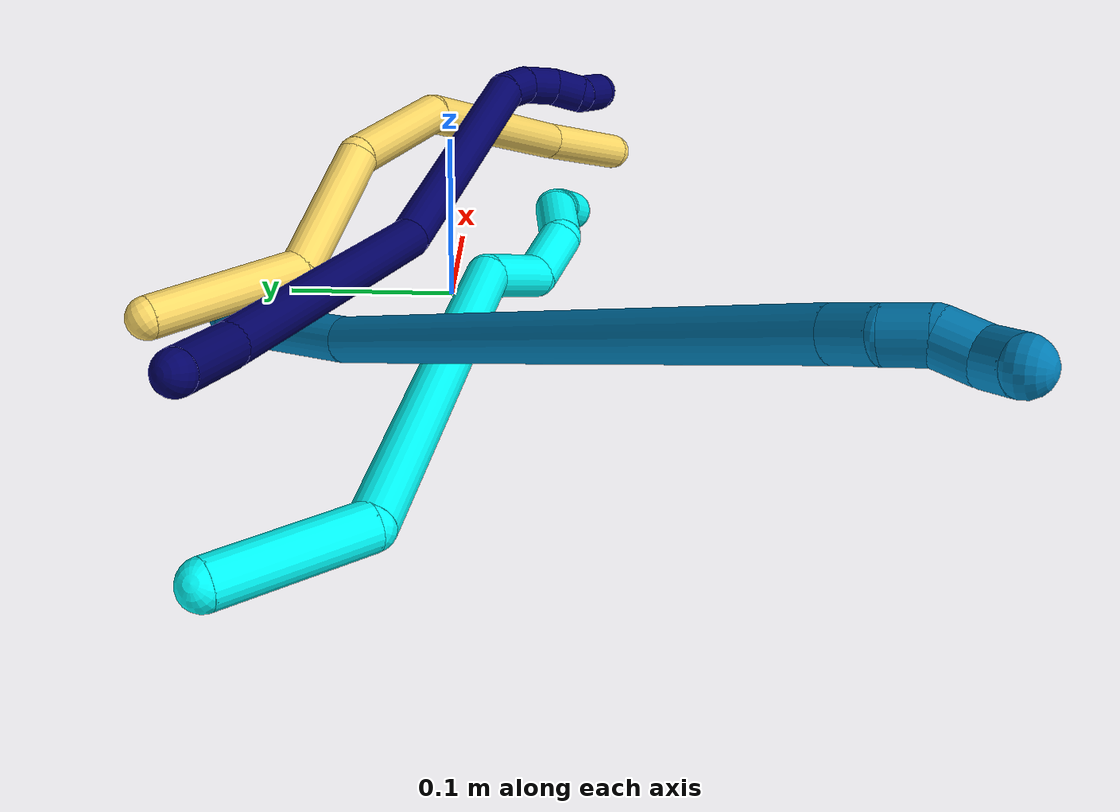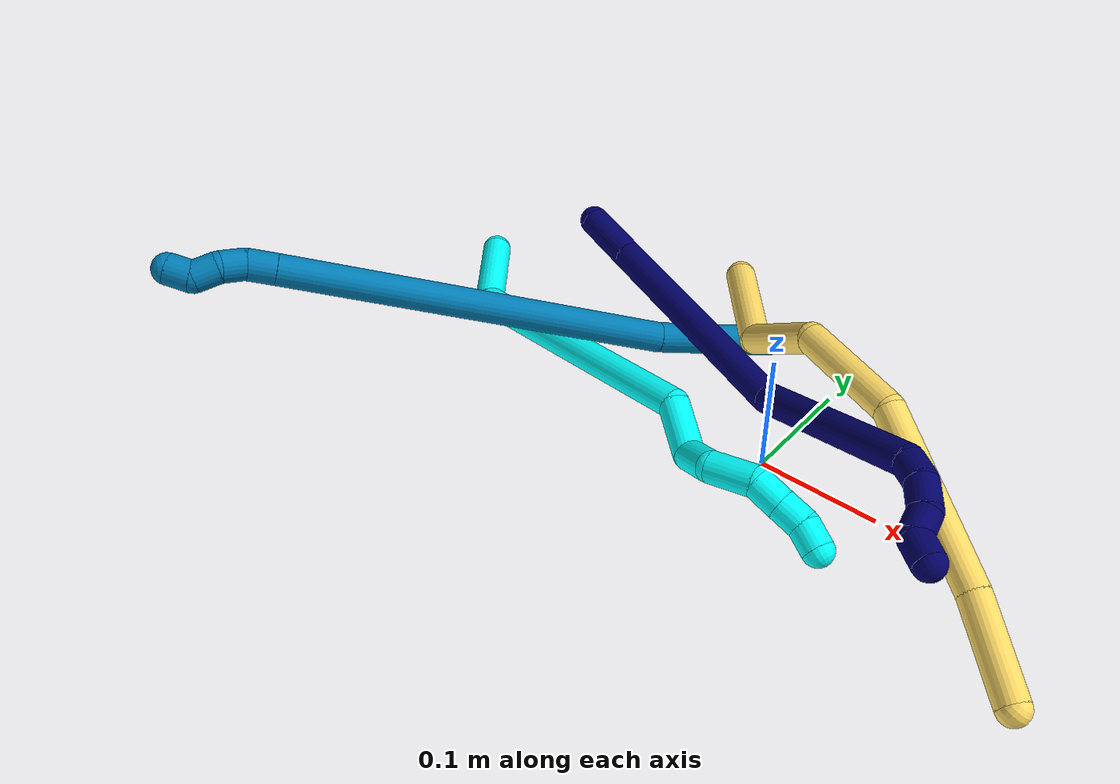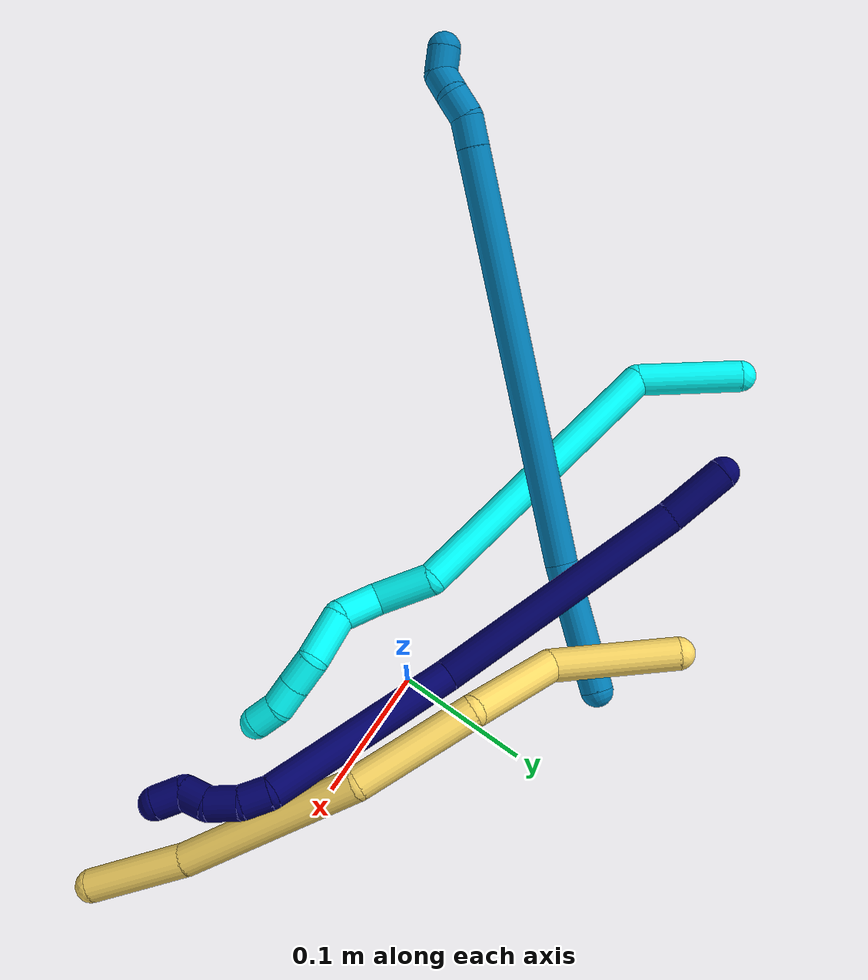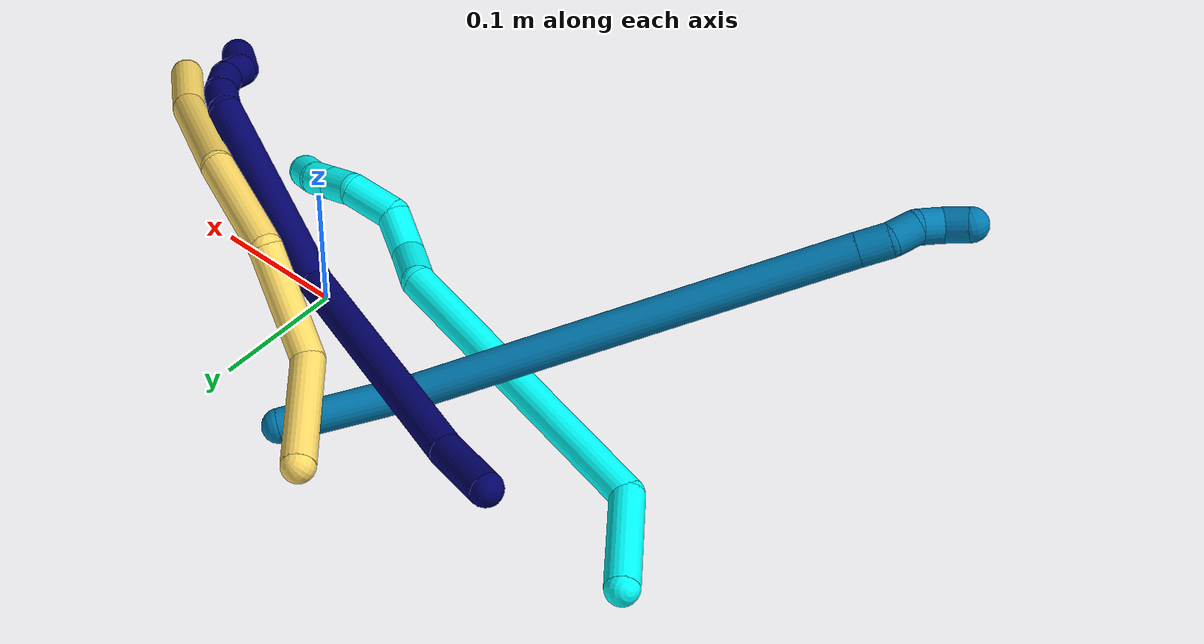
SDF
<sdf version="1.7">
 <world name="default">
  <model name="3">
   <static>0</static>
   <link name="3">
    <collision name="collision-cylinder-e_1_1_4">
     <pose>0.005523 -0.03026 -0.026968 2.29874 0.135416 0.300265</pose>
     <geometry><cylinder><radius>0.0125</radius><length>0.081816</length></cylinder></geometry>
     <surface>
      <friction><ode><mu>1.16</mu><mu2>1.16</mu2><slip1>0</slip1><slip2>0</slip2></ode></friction>
      <contact><ode><kp>1e+06</kp><kd>1</kd><max_vel>0</max_vel><min_depth>0.001</min_depth></ode></contact>
     </surface>
    </collision>
    <visual name="visual-cylinder-e_1_1_4">
     <pose>0.005523 -0.03026 -0.026968 2.29874 0.135416 0.300265</pose>
     <geometry><cylinder><radius>0.0125</radius><length>0.081816</length></cylinder></geometry>
     <material><ambient>0.003922 1 0.996078 1</ambient></material>
    </visual>
    <collision name="collision-cylinder-e_2_4_5">
     <pose>0.083018 -0.082667 -0.143167 2.8983 0.664191 2.46028</pose>
     <geometry><cylinder><radius>0.0125</radius><length>0.233517</length></cylinder></geometry>
     <surface>
      <friction><ode><mu>1.16</mu><mu2>1.16</mu2><slip1>0</slip1><slip2>0</slip2></ode></friction>
      <contact><ode><kp>1e+06</kp><kd>1</kd><max_vel>0</max_vel><min_depth>0.001</min_depth></ode></contact>
     </surface>
    </collision>
    <visual name="visual-cylinder-e_2_4_5">
     <pose>0.083018 -0.082667 -0.143167 2.8983 0.664191 2.46028</pose>
     <geometry><cylinder><radius>0.0125</radius><length>0.233517</length></cylinder></geometry>
     <material><ambient>0.003922 1 0.996078 1</ambient></material>
    </visual>
    <collision name="collision-cylinder-e_3_5_6">
     <pose>0.156013 -0.114681 -0.253229 2.69927 0.044312 0.19648</pose>
     <geometry><cylinder><radius>0.0125</radius><length>0.046147</length></cylinder></geometry>
     <surface>
      <friction><ode><mu>1.16</mu><mu2>1.16</mu2><slip1>0</slip1><slip2>0</slip2></ode></friction>
      <contact><ode><kp>1e+06</kp><kd>1</kd><max_vel>0</max_vel><min_depth>0.001</min_depth></ode></contact>
     </surface>
    </collision>
    <visual name="visual-cylinder-e_3_5_6">
     <pose>0.156013 -0.114681 -0.253229 2.69927 0.044312 0.19648</pose>
     <geometry><cylinder><radius>0.0125</radius><length>0.046147</length></cylinder></geometry>
     <material><ambient>0.003922 1 0.996078 1</ambient></material>
    </visual>
    <collision name="collision-cylinder-e_4_6_7">
     <pose>0.168555 -0.133363 -0.283065 2.36674 0.740649 1.52104</pose>
     <geometry><cylinder><radius>0.0125</radius><length>0.034147</length></cylinder></geometry>
     <surface>
      <friction><ode><mu>1.16</mu><mu2>1.16</mu2><slip1>0</slip1><slip2>0</slip2></ode></friction>
      <contact><ode><kp>1e+06</kp><kd>1</kd><max_vel>0</max_vel><min_depth>0.001</min_depth></ode></contact>
     </surface>
    </collision>
    <visual name="visual-cylinder-e_4_6_7">
     <pose>0.168555 -0.133363 -0.283065 2.36674 0.740649 1.52104</pose>
     <geometry><cylinder><radius>0.0125</radius><length>0.034147</length></cylinder></geometry>
     <material><ambient>0.003922 1 0.996078 1</ambient></material>
    </visual>
    <collision name="collision-cylinder-e_5_7_8">
     <pose>0.193372 -0.141142 -0.30559 -3.06509 0.775506 -2.95474</pose>
     <geometry><cylinder><radius>0.0125</radius><length>0.037984</length></cylinder></geometry>
     <surface>
      <friction><ode><mu>1.16</mu><mu2>1.16</mu2><slip1>0</slip1><slip2>0</slip2></ode></friction>
      <contact><ode><kp>1e+06</kp><kd>1</kd><max_vel>0</max_vel><min_depth>0.001</min_depth></ode></contact>
     </surface>
    </collision>
    <visual name="visual-cylinder-e_5_7_8">
     <pose>0.193372 -0.141142 -0.30559 -3.06509 0.775506 -2.95474</pose>
     <geometry><cylinder><radius>0.0125</radius><length>0.037984</length></cylinder></geometry>
     <material><ambient>0.003922 1 0.996078 1</ambient></material>
    </visual>
    <collision name="collision-cylinder-e_6_8_9">
     <pose>0.2101 -0.139232 -0.330549 -3.06534 0.290783 -2.63191</pose>
     <geometry><cylinder><radius>0.0125</radius><length>0.023945</length></cylinder></geometry>
     <surface>
      <friction><ode><mu>1.16</mu><mu2>1.16</mu2><slip1>0</slip1><slip2>0</slip2></ode></friction>
      <contact><ode><kp>1e+06</kp><kd>1</kd><max_vel>0</max_vel><min_depth>0.001</min_depth></ode></contact>
     </surface>
    </collision>
    <visual name="visual-cylinder-e_6_8_9">
     <pose>0.2101 -0.139232 -0.330549 -3.06534 0.290783 -2.63191</pose>
     <geometry><cylinder><radius>0.0125</radius><length>0.023945</length></cylinder></geometry>
     <material><ambient>0.003922 1 0.996078 1</ambient></material>
    </visual>
    <collision name="collision-cylinder-e_7_9_10">
     <pose>0.216673 -0.137473 -0.352075 -3.05408 0.300649 -2.57881</pose>
     <geometry><cylinder><radius>0.0125</radius><length>0.021208</length></cylinder></geometry>
     <surface>
      <friction><ode><mu>1.16</mu><mu2>1.16</mu2><slip1>0</slip1><slip2>0</slip2></ode></friction>
      <contact><ode><kp>1e+06</kp><kd>1</kd><max_vel>0</max_vel><min_depth>0.001</min_depth></ode></contact>
     </surface>
    </collision>
    <visual name="visual-cylinder-e_7_9_10">
     <pose>0.216673 -0.137473 -0.352075 -3.05408 0.300649 -2.57881</pose>
     <geometry><cylinder><radius>0.0125</radius><length>0.021208</length></cylinder></geometry>
     <material><ambient>0.003922 1 0.996078 1</ambient></material>
    </visual>
    <collision name="collision-cylinder-e_8_10_2">
     <pose>0.220695 -0.138519 -0.372569 2.95809 0.083191 0.849604</pose>
     <geometry><cylinder><radius>0.0125</radius><length>0.021237</length></cylinder></geometry>
     <surface>
      <friction><ode><mu>1.16</mu><mu2>1.16</mu2><slip1>0</slip1><slip2>0</slip2></ode></friction>
      <contact><ode><kp>1e+06</kp><kd>1</kd><max_vel>0</max_vel><min_depth>0.001</min_depth></ode></contact>
     </surface>
    </collision>
    <visual name="visual-cylinder-e_8_10_2">
     <pose>0.220695 -0.138519 -0.372569 2.95809 0.083191 0.849604</pose>
     <geometry><cylinder><radius>0.0125</radius><length>0.021237</length></cylinder></geometry>
     <material><ambient>0.003922 1 0.996078 1</ambient></material>
    </visual>
    <collision name="collision-sphere-2">
     <pose>0.221578 -0.140449 -0.382973 0 -0 0</pose>
     <geometry><sphere><radius>0.0125</radius></sphere></geometry>
     <surface>
      <friction><ode><mu>1.16</mu><mu2>1.16</mu2><slip1>0</slip1><slip2>0</slip2></ode></friction>
      <contact><ode><kp>1e+06</kp><kd>1</kd><max_vel>0</max_vel><min_depth>0.001</min_depth></ode></contact>
     </surface>
    </collision>
    <visual name="visual-sphere-2">
     <pose>0.221578 -0.140449 -0.382973 0 -0 0</pose>
     <geometry><sphere><radius>0.0125</radius></sphere></geometry>
     <material><ambient>0.003922 1 0.996078 1</ambient></material>
    </visual>
    <collision name="collision-sphere-10">
     <pose>0.219813 -0.136588 -0.362165 0 -0 0</pose>
     <geometry><sphere><radius>0.0125</radius></sphere></geometry>
     <surface>
      <friction><ode><mu>1.16</mu><mu2>1.16</mu2><slip1>0</slip1><slip2>0</slip2></ode></friction>
      <contact><ode><kp>1e+06</kp><kd>1</kd><max_vel>0</max_vel><min_depth>0.001</min_depth></ode></contact>
     </surface>
    </collision>
    <visual name="visual-sphere-10">
     <pose>0.219813 -0.136588 -0.362165 0 -0 0</pose>
     <geometry><sphere><radius>0.0125</radius></sphere></geometry>
     <material><ambient>0.003922 1 0.996078 1</ambient></material>
    </visual>
    <collision name="collision-sphere-9">
     <pose>0.213532 -0.138358 -0.341985 0 -0 0</pose>
     <geometry><sphere><radius>0.0125</radius></sphere></geometry>
     <surface>
      <friction><ode><mu>1.16</mu><mu2>1.16</mu2><slip1>0</slip1><slip2>0</slip2></ode></friction>
      <contact><ode><kp>1e+06</kp><kd>1</kd><max_vel>0</max_vel><min_depth>0.001</min_depth></ode></contact>
     </surface>
    </collision>
    <visual name="visual-sphere-9">
     <pose>0.213532 -0.138358 -0.341985 0 -0 0</pose>
     <geometry><sphere><radius>0.0125</radius></sphere></geometry>
     <material><ambient>0.003922 1 0.996078 1</ambient></material>
    </visual>
    <collision name="collision-sphere-4">
     <pose>0.011045 -0.06052 -0.053937 0 -0 0</pose>
     <geometry><sphere><radius>0.0125</radius></sphere></geometry>
     <surface>
      <friction><ode><mu>1.16</mu><mu2>1.16</mu2><slip1>0</slip1><slip2>0</slip2></ode></friction>
      <contact><ode><kp>1e+06</kp><kd>1</kd><max_vel>0</max_vel><min_depth>0.001</min_depth></ode></contact>
     </surface>
    </collision>
    <visual name="visual-sphere-4">
     <pose>0.011045 -0.06052 -0.053937 0 -0 0</pose>
     <geometry><sphere><radius>0.0125</radius></sphere></geometry>
     <material><ambient>0.003922 1 0.996078 1</ambient></material>
    </visual>
    <collision name="collision-sphere-1">
     <geometry><sphere><radius>0.0125</radius></sphere></geometry>
     <surface>
      <friction><ode><mu>1.16</mu><mu2>1.16</mu2><slip1>0</slip1><slip2>0</slip2></ode></friction>
      <contact><ode><kp>1e+06</kp><kd>1</kd><max_vel>0</max_vel><min_depth>0.001</min_depth></ode></contact>
     </surface>
    </collision>
    <visual name="visual-sphere-1">
     <geometry><sphere><radius>0.0125</radius></sphere></geometry>
     <material><ambient>0.003922 1 0.996078 1</ambient></material>
    </visual>
    <collision name="collision-sphere-8">
     <pose>0.206667 -0.140106 -0.319112 0 -0 0</pose>
     <geometry><sphere><radius>0.0125</radius></sphere></geometry>
     <surface>
      <friction><ode><mu>1.16</mu><mu2>1.16</mu2><slip1>0</slip1><slip2>0</slip2></ode></friction>
      <contact><ode><kp>1e+06</kp><kd>1</kd><max_vel>0</max_vel><min_depth>0.001</min_depth></ode></contact>
     </surface>
    </collision>
    <visual name="visual-sphere-8">
     <pose>0.206667 -0.140106 -0.319112 0 -0 0</pose>
     <geometry><sphere><radius>0.0125</radius></sphere></geometry>
     <material><ambient>0.003922 1 0.996078 1</ambient></material>
    </visual>
    <collision name="collision-sphere-5">
     <pose>0.15499 -0.104814 -0.232397 0 -0 0</pose>
     <geometry><sphere><radius>0.0125</radius></sphere></geometry>
     <surface>
      <friction><ode><mu>1.16</mu><mu2>1.16</mu2><slip1>0</slip1><slip2>0</slip2></ode></friction>
      <contact><ode><kp>1e+06</kp><kd>1</kd><max_vel>0</max_vel><min_depth>0.001</min_depth></ode></contact>
     </surface>
    </collision>
    <visual name="visual-sphere-5">
     <pose>0.15499 -0.104814 -0.232397 0 -0 0</pose>
     <geometry><sphere><radius>0.0125</radius></sphere></geometry>
     <material><ambient>0.003922 1 0.996078 1</ambient></material>
    </visual>
    <collision name="collision-sphere-6">
     <pose>0.157035 -0.124547 -0.274062 0 -0 0</pose>
     <geometry><sphere><radius>0.0125</radius></sphere></geometry>
     <surface>
      <friction><ode><mu>1.16</mu><mu2>1.16</mu2><slip1>0</slip1><slip2>0</slip2></ode></friction>
      <contact><ode><kp>1e+06</kp><kd>1</kd><max_vel>0</max_vel><min_depth>0.001</min_depth></ode></contact>
     </surface>
    </collision>
    <visual name="visual-sphere-6">
     <pose>0.157035 -0.124547 -0.274062 0 -0 0</pose>
     <geometry><sphere><radius>0.0125</radius></sphere></geometry>
     <material><ambient>0.003922 1 0.996078 1</ambient></material>
    </visual>
    <collision name="collision-sphere-7">
     <pose>0.180076 -0.142179 -0.292069 0 -0 0</pose>
     <geometry><sphere><radius>0.0125</radius></sphere></geometry>
     <surface>
      <friction><ode><mu>1.16</mu><mu2>1.16</mu2><slip1>0</slip1><slip2>0</slip2></ode></friction>
      <contact><ode><kp>1e+06</kp><kd>1</kd><max_vel>0</max_vel><min_depth>0.001</min_depth></ode></contact>
     </surface>
    </collision>
    <visual name="visual-sphere-7">
     <pose>0.180076 -0.142179 -0.292069 0 -0 0</pose>
     <geometry><sphere><radius>0.0125</radius></sphere></geometry>
     <material><ambient>0.003922 1 0.996078 1</ambient></material>
    </visual>
    <inertial>
     <pose>0.108902 -0.092356 -0.183783 0 -0 0</pose>
     <mass>0.5</mass>
     <inertia>
      <ixx>-3.8e-05</ixx>
      <ixy>0</ixy>
      <ixz>0</ixz>
      <iyy>0.001417</iyy>
      <iyz>0</iyz>
      <izz>-0.00046</izz>
     </inertia>
    </inertial>
   </link>
   <pose>-0.3467 0.078879 0.012501 -0.577854 -0.864778 0.447709</pose>
  </model>
  <model name="5">
   <static>0</static>
   <link name="5">
    <collision name="collision-cylinder-e_1_1_4">
     <pose>0.047794 0.001089 0.007816 -0.138445 1.40715 -0.117512</pose>
     <geometry><cylinder><radius>0.0125</radius><length>0.096883</length></cylinder></geometry>
     <surface>
      <friction><ode><mu>1.16</mu><mu2>1.16</mu2><slip1>0</slip1><slip2>0</slip2></ode></friction>
      <contact><ode><kp>1e+06</kp><kd>1</kd><max_vel>0</max_vel><min_depth>0.001</min_depth></ode></contact>
     </surface>
    </collision>
    <visual name="visual-cylinder-e_1_1_4">
     <pose>0.047794 0.001089 0.007816 -0.138445 1.40715 -0.117512</pose>
     <geometry><cylinder><radius>0.0125</radius><length>0.096883</length></cylinder></geometry>
     <material><ambient>1 0.858824 0.4 1</ambient></material>
    </visual>
    <collision name="collision-cylinder-e_2_4_5">
     <pose>0.131407 0.004728 -0.006503 -3.0269 1.01429 -2.93568</pose>
     <geometry><cylinder><radius>0.0125</radius><length>0.084368</length></cylinder></geometry>
     <surface>
      <friction><ode><mu>1.16</mu><mu2>1.16</mu2><slip1>0</slip1><slip2>0</slip2></ode></friction>
      <contact><ode><kp>1e+06</kp><kd>1</kd><max_vel>0</max_vel><min_depth>0.001</min_depth></ode></contact>
     </surface>
    </collision>
    <visual name="visual-cylinder-e_2_4_5">
     <pose>0.131407 0.004728 -0.006503 -3.0269 1.01429 -2.93568</pose>
     <geometry><cylinder><radius>0.0125</radius><length>0.084368</length></cylinder></geometry>
     <material><ambient>1 0.858824 0.4 1</ambient></material>
    </visual>
    <collision name="collision-cylinder-e_3_5_6">
     <pose>0.211465 -0.008838 -0.033547 1.86641 1.20694 1.49871</pose>
     <geometry><cylinder><radius>0.0125</radius><length>0.094676</length></cylinder></geometry>
     <surface>
      <friction><ode><mu>1.16</mu><mu2>1.16</mu2><slip1>0</slip1><slip2>0</slip2></ode></friction>
      <contact><ode><kp>1e+06</kp><kd>1</kd><max_vel>0</max_vel><min_depth>0.001</min_depth></ode></contact>
     </surface>
    </collision>
    <visual name="visual-cylinder-e_3_5_6">
     <pose>0.211465 -0.008838 -0.033547 1.86641 1.20694 1.49871</pose>
     <geometry><cylinder><radius>0.0125</radius><length>0.094676</length></cylinder></geometry>
     <material><ambient>1 0.858824 0.4 1</ambient></material>
    </visual>
    <collision name="collision-cylinder-e_4_6_7">
     <pose>0.317365 -0.05685 -0.017432 0.988041 1.01614 0.582708</pose>
     <geometry><cylinder><radius>0.0125</radius><length>0.145071</length></cylinder></geometry>
     <surface>
      <friction><ode><mu>1.16</mu><mu2>1.16</mu2><slip1>0</slip1><slip2>0</slip2></ode></friction>
      <contact><ode><kp>1e+06</kp><kd>1</kd><max_vel>0</max_vel><min_depth>0.001</min_depth></ode></contact>
     </surface>
    </collision>
    <visual name="visual-cylinder-e_4_6_7">
     <pose>0.317365 -0.05685 -0.017432 0.988041 1.01614 0.582708</pose>
     <geometry><cylinder><radius>0.0125</radius><length>0.145071</length></cylinder></geometry>
     <material><ambient>1 0.858824 0.4 1</ambient></material>
    </visual>
    <collision name="collision-cylinder-e_5_7_2">
     <pose>0.413864 -0.101514 0.017141 0.755706 1.08 0.467172</pose>
     <geometry><cylinder><radius>0.0125</radius><length>0.079002</length></cylinder></geometry>
     <surface>
      <friction><ode><mu>1.16</mu><mu2>1.16</mu2><slip1>0</slip1><slip2>0</slip2></ode></friction>
      <contact><ode><kp>1e+06</kp><kd>1</kd><max_vel>0</max_vel><min_depth>0.001</min_depth></ode></contact>
     </surface>
    </collision>
    <visual name="visual-cylinder-e_5_7_2">
     <pose>0.413864 -0.101514 0.017141 0.755706 1.08 0.467172</pose>
     <geometry><cylinder><radius>0.0125</radius><length>0.079002</length></cylinder></geometry>
     <material><ambient>1 0.858824 0.4 1</ambient></material>
    </visual>
    <collision name="collision-sphere-2">
     <pose>0.448703 -0.114282 0.030691 0 -0 0</pose>
     <geometry><sphere><radius>0.0125</radius></sphere></geometry>
     <surface>
      <friction><ode><mu>1.16</mu><mu2>1.16</mu2><slip1>0</slip1><slip2>0</slip2></ode></friction>
      <contact><ode><kp>1e+06</kp><kd>1</kd><max_vel>0</max_vel><min_depth>0.001</min_depth></ode></contact>
     </surface>
    </collision>
    <visual name="visual-sphere-2">
     <pose>0.448703 -0.114282 0.030691 0 -0 0</pose>
     <geometry><sphere><radius>0.0125</radius></sphere></geometry>
     <material><ambient>1 0.858824 0.4 1</ambient></material>
    </visual>
    <collision name="collision-sphere-7">
     <pose>0.379026 -0.088746 0.003591 0 -0 0</pose>
     <geometry><sphere><radius>0.0125</radius></sphere></geometry>
     <surface>
      <friction><ode><mu>1.16</mu><mu2>1.16</mu2><slip1>0</slip1><slip2>0</slip2></ode></friction>
      <contact><ode><kp>1e+06</kp><kd>1</kd><max_vel>0</max_vel><min_depth>0.001</min_depth></ode></contact>
     </surface>
    </collision>
    <visual name="visual-sphere-7">
     <pose>0.379026 -0.088746 0.003591 0 -0 0</pose>
     <geometry><sphere><radius>0.0125</radius></sphere></geometry>
     <material><ambient>1 0.858824 0.4 1</ambient></material>
    </visual>
    <collision name="collision-sphere-6">
     <pose>0.255703 -0.024954 -0.038455 0 -0 0</pose>
     <geometry><sphere><radius>0.0125</radius></sphere></geometry>
     <surface>
      <friction><ode><mu>1.16</mu><mu2>1.16</mu2><slip1>0</slip1><slip2>0</slip2></ode></friction>
      <contact><ode><kp>1e+06</kp><kd>1</kd><max_vel>0</max_vel><min_depth>0.001</min_depth></ode></contact>
     </surface>
    </collision>
    <visual name="visual-sphere-6">
     <pose>0.255703 -0.024954 -0.038455 0 -0 0</pose>
     <geometry><sphere><radius>0.0125</radius></sphere></geometry>
     <material><ambient>1 0.858824 0.4 1</ambient></material>
    </visual>
    <collision name="collision-sphere-5">
     <pose>0.167226 0.007278 -0.028639 0 -0 0</pose>
     <geometry><sphere><radius>0.0125</radius></sphere></geometry>
     <surface>
      <friction><ode><mu>1.16</mu><mu2>1.16</mu2><slip1>0</slip1><slip2>0</slip2></ode></friction>
      <contact><ode><kp>1e+06</kp><kd>1</kd><max_vel>0</max_vel><min_depth>0.001</min_depth></ode></contact>
     </surface>
    </collision>
    <visual name="visual-sphere-5">
     <pose>0.167226 0.007278 -0.028639 0 -0 0</pose>
     <geometry><sphere><radius>0.0125</radius></sphere></geometry>
     <material><ambient>1 0.858824 0.4 1</ambient></material>
    </visual>
    <collision name="collision-sphere-1">
     <geometry><sphere><radius>0.0125</radius></sphere></geometry>
     <surface>
      <friction><ode><mu>1.16</mu><mu2>1.16</mu2><slip1>0</slip1><slip2>0</slip2></ode></friction>
      <contact><ode><kp>1e+06</kp><kd>1</kd><max_vel>0</max_vel><min_depth>0.001</min_depth></ode></contact>
     </surface>
    </collision>
    <visual name="visual-sphere-1">
     <geometry><sphere><radius>0.0125</radius></sphere></geometry>
     <material><ambient>1 0.858824 0.4 1</ambient></material>
    </visual>
    <collision name="collision-sphere-4">
     <pose>0.095589 0.002178 0.015633 0 -0 0</pose>
     <geometry><sphere><radius>0.0125</radius></sphere></geometry>
     <surface>
      <friction><ode><mu>1.16</mu><mu2>1.16</mu2><slip1>0</slip1><slip2>0</slip2></ode></friction>
      <contact><ode><kp>1e+06</kp><kd>1</kd><max_vel>0</max_vel><min_depth>0.001</min_depth></ode></contact>
     </surface>
    </collision>
    <visual name="visual-sphere-4">
     <pose>0.095589 0.002178 0.015633 0 -0 0</pose>
     <geometry><sphere><radius>0.0125</radius></sphere></geometry>
     <material><ambient>1 0.858824 0.4 1</ambient></material>
    </visual>
    <inertial>
     <pose>0.228948 -0.033199 -0.008284 0 -0 0</pose>
     <mass>0.5</mass>
     <inertia>
      <ixx>0.000259</ixx>
      <ixy>0</ixy>
      <ixz>0</ixz>
      <iyy>0.000554</iyy>
      <iyz>0</iyz>
      <izz>-0.000302</izz>
     </inertia>
    </inertial>
   </link>
   <pose>-0.128103 0.155931 0.037033 2.46229 -0.154437 -0.744353</pose>
  </model>
  <model name="7">
   <static>0</static>
   <link name="7">
    <collision name="collision-cylinder-e_1_1_4">
     <pose>0.005402 0.003462 -0.02473 -3.00251 0.213042 -1.98685</pose>
     <geometry><cylinder><radius>0.0125</radius><length>0.051096</length></cylinder></geometry>
     <surface>
      <friction><ode><mu>1.16</mu><mu2>1.16</mu2><slip1>0</slip1><slip2>0</slip2></ode></friction>
      <contact><ode><kp>1e+06</kp><kd>1</kd><max_vel>0</max_vel><min_depth>0.001</min_depth></ode></contact>
     </surface>
    </collision>
    <visual name="visual-cylinder-e_1_1_4">
     <pose>0.005402 0.003462 -0.02473 -3.00251 0.213042 -1.98685</pose>
     <geometry><cylinder><radius>0.0125</radius><length>0.051096</length></cylinder></geometry>
     <material><ambient>0.003922 0 0.403922 1</ambient></material>
    </visual>
    <collision name="collision-cylinder-e_2_4_5">
     <pose>0.037193 0.01044 -0.147723 -3.10582 0.26221 -2.87191</pose>
     <geometry><cylinder><radius>0.0125</radius><length>0.203613</length></cylinder></geometry>
     <surface>
      <friction><ode><mu>1.16</mu><mu2>1.16</mu2><slip1>0</slip1><slip2>0</slip2></ode></friction>
      <contact><ode><kp>1e+06</kp><kd>1</kd><max_vel>0</max_vel><min_depth>0.001</min_depth></ode></contact>
     </surface>
    </collision>
    <visual name="visual-cylinder-e_2_4_5">
     <pose>0.037193 0.01044 -0.147723 -3.10582 0.26221 -2.87191</pose>
     <geometry><cylinder><radius>0.0125</radius><length>0.203613</length></cylinder></geometry>
     <material><ambient>0.003922 0 0.403922 1</ambient></material>
    </visual>
    <collision name="collision-cylinder-e_3_5_6">
     <pose>0.108884 0.00046 -0.309523 2.93227 0.609002 2.49646</pose>
     <geometry><cylinder><radius>0.0125</radius><length>0.158381</length></cylinder></geometry>
     <surface>
      <friction><ode><mu>1.16</mu><mu2>1.16</mu2><slip1>0</slip1><slip2>0</slip2></ode></friction>
      <contact><ode><kp>1e+06</kp><kd>1</kd><max_vel>0</max_vel><min_depth>0.001</min_depth></ode></contact>
     </surface>
    </collision>
    <visual name="visual-cylinder-e_3_5_6">
     <pose>0.108884 0.00046 -0.309523 2.93227 0.609002 2.49646</pose>
     <geometry><cylinder><radius>0.0125</radius><length>0.158381</length></cylinder></geometry>
     <material><ambient>0.003922 0 0.403922 1</ambient></material>
    </visual>
    <collision name="collision-cylinder-e_4_6_7">
     <pose>0.155948 -0.01545 -0.383016 2.90384 0.170433 1.24171</pose>
     <geometry><cylinder><radius>0.0125</radius><length>0.020792</length></cylinder></geometry>
     <surface>
      <friction><ode><mu>1.16</mu><mu2>1.16</mu2><slip1>0</slip1><slip2>0</slip2></ode></friction>
      <contact><ode><kp>1e+06</kp><kd>1</kd><max_vel>0</max_vel><min_depth>0.001</min_depth></ode></contact>
     </surface>
    </collision>
    <visual name="visual-cylinder-e_4_6_7">
     <pose>0.155948 -0.01545 -0.383016 2.90384 0.170433 1.24171</pose>
     <geometry><cylinder><radius>0.0125</radius><length>0.020792</length></cylinder></geometry>
     <material><ambient>0.003922 0 0.403922 1</ambient></material>
    </visual>
    <collision name="collision-cylinder-e_5_7_8">
     <pose>0.155818 -0.022167 -0.403923 2.76703 -0.159602 -0.79867</pose>
     <geometry><cylinder><radius>0.0125</radius><length>0.023834</length></cylinder></geometry>
     <surface>
      <friction><ode><mu>1.16</mu><mu2>1.16</mu2><slip1>0</slip1><slip2>0</slip2></ode></friction>
      <contact><ode><kp>1e+06</kp><kd>1</kd><max_vel>0</max_vel><min_depth>0.001</min_depth></ode></contact>
     </surface>
    </collision>
    <visual name="visual-cylinder-e_5_7_8">
     <pose>0.155818 -0.022167 -0.403923 2.76703 -0.159602 -0.79867</pose>
     <geometry><cylinder><radius>0.0125</radius><length>0.023834</length></cylinder></geometry>
     <material><ambient>0.003922 0 0.403922 1</ambient></material>
    </visual>
    <collision name="collision-cylinder-e_6_8_9">
     <pose>0.148904 -0.032211 -0.421704 2.44287 -0.512458 -1.24692</pose>
     <geometry><cylinder><radius>0.0125</radius><length>0.020474</length></cylinder></geometry>
     <surface>
      <friction><ode><mu>1.16</mu><mu2>1.16</mu2><slip1>0</slip1><slip2>0</slip2></ode></friction>
      <contact><ode><kp>1e+06</kp><kd>1</kd><max_vel>0</max_vel><min_depth>0.001</min_depth></ode></contact>
     </surface>
    </collision>
    <visual name="visual-cylinder-e_6_8_9">
     <pose>0.148904 -0.032211 -0.421704 2.44287 -0.512458 -1.24692</pose>
     <geometry><cylinder><radius>0.0125</radius><length>0.020474</length></cylinder></geometry>
     <material><ambient>0.003922 0 0.403922 1</ambient></material>
    </visual>
    <collision name="collision-cylinder-e_7_9_2">
     <pose>0.144584 -0.039583 -0.439294 2.99097 0.06413 0.803913</pose>
     <geometry><cylinder><radius>0.0125</radius><length>0.021809</length></cylinder></geometry>
     <surface>
      <friction><ode><mu>1.16</mu><mu2>1.16</mu2><slip1>0</slip1><slip2>0</slip2></ode></friction>
      <contact><ode><kp>1e+06</kp><kd>1</kd><max_vel>0</max_vel><min_depth>0.001</min_depth></ode></contact>
     </surface>
    </collision>
    <visual name="visual-cylinder-e_7_9_2">
     <pose>0.144584 -0.039583 -0.439294 2.99097 0.06413 0.803913</pose>
     <geometry><cylinder><radius>0.0125</radius><length>0.021809</length></cylinder></geometry>
     <material><ambient>0.003922 0 0.403922 1</ambient></material>
    </visual>
    <collision name="collision-sphere-2">
     <pose>0.145283 -0.041216 -0.450053 0 -0 0</pose>
     <geometry><sphere><radius>0.0125</radius></sphere></geometry>
     <surface>
      <friction><ode><mu>1.16</mu><mu2>1.16</mu2><slip1>0</slip1><slip2>0</slip2></ode></friction>
      <contact><ode><kp>1e+06</kp><kd>1</kd><max_vel>0</max_vel><min_depth>0.001</min_depth></ode></contact>
     </surface>
    </collision>
    <visual name="visual-sphere-2">
     <pose>0.145283 -0.041216 -0.450053 0 -0 0</pose>
     <geometry><sphere><radius>0.0125</radius></sphere></geometry>
     <material><ambient>0.003922 0 0.403922 1</ambient></material>
    </visual>
    <collision name="collision-sphere-9">
     <pose>0.143885 -0.03795 -0.428535 0 -0 0</pose>
     <geometry><sphere><radius>0.0125</radius></sphere></geometry>
     <surface>
      <friction><ode><mu>1.16</mu><mu2>1.16</mu2><slip1>0</slip1><slip2>0</slip2></ode></friction>
      <contact><ode><kp>1e+06</kp><kd>1</kd><max_vel>0</max_vel><min_depth>0.001</min_depth></ode></contact>
     </surface>
    </collision>
    <visual name="visual-sphere-9">
     <pose>0.143885 -0.03795 -0.428535 0 -0 0</pose>
     <geometry><sphere><radius>0.0125</radius></sphere></geometry>
     <material><ambient>0.003922 0 0.403922 1</ambient></material>
    </visual>
    <collision name="collision-sphere-4">
     <pose>0.010804 0.006924 -0.049459 0 -0 0</pose>
     <geometry><sphere><radius>0.0125</radius></sphere></geometry>
     <surface>
      <friction><ode><mu>1.16</mu><mu2>1.16</mu2><slip1>0</slip1><slip2>0</slip2></ode></friction>
      <contact><ode><kp>1e+06</kp><kd>1</kd><max_vel>0</max_vel><min_depth>0.001</min_depth></ode></contact>
     </surface>
    </collision>
    <visual name="visual-sphere-4">
     <pose>0.010804 0.006924 -0.049459 0 -0 0</pose>
     <geometry><sphere><radius>0.0125</radius></sphere></geometry>
     <material><ambient>0.003922 0 0.403922 1</ambient></material>
    </visual>
    <collision name="collision-sphere-1">
     <geometry><sphere><radius>0.0125</radius></sphere></geometry>
     <surface>
      <friction><ode><mu>1.16</mu><mu2>1.16</mu2><slip1>0</slip1><slip2>0</slip2></ode></friction>
      <contact><ode><kp>1e+06</kp><kd>1</kd><max_vel>0</max_vel><min_depth>0.001</min_depth></ode></contact>
     </surface>
    </collision>
    <visual name="visual-sphere-1">
     <geometry><sphere><radius>0.0125</radius></sphere></geometry>
     <material><ambient>0.003922 0 0.403922 1</ambient></material>
    </visual>
    <collision name="collision-sphere-8">
     <pose>0.153924 -0.026472 -0.414873 0 -0 0</pose>
     <geometry><sphere><radius>0.0125</radius></sphere></geometry>
     <surface>
      <friction><ode><mu>1.16</mu><mu2>1.16</mu2><slip1>0</slip1><slip2>0</slip2></ode></friction>
      <contact><ode><kp>1e+06</kp><kd>1</kd><max_vel>0</max_vel><min_depth>0.001</min_depth></ode></contact>
     </surface>
    </collision>
    <visual name="visual-sphere-8">
     <pose>0.153924 -0.026472 -0.414873 0 -0 0</pose>
     <geometry><sphere><radius>0.0125</radius></sphere></geometry>
     <material><ambient>0.003922 0 0.403922 1</ambient></material>
    </visual>
    <collision name="collision-sphere-5">
     <pose>0.063583 0.013957 -0.245987 0 -0 0</pose>
     <geometry><sphere><radius>0.0125</radius></sphere></geometry>
     <surface>
      <friction><ode><mu>1.16</mu><mu2>1.16</mu2><slip1>0</slip1><slip2>0</slip2></ode></friction>
      <contact><ode><kp>1e+06</kp><kd>1</kd><max_vel>0</max_vel><min_depth>0.001</min_depth></ode></contact>
     </surface>
    </collision>
    <visual name="visual-sphere-5">
     <pose>0.063583 0.013957 -0.245987 0 -0 0</pose>
     <geometry><sphere><radius>0.0125</radius></sphere></geometry>
     <material><ambient>0.003922 0 0.403922 1</ambient></material>
    </visual>
    <collision name="collision-sphere-6">
     <pose>0.154185 -0.013037 -0.373059 0 -0 0</pose>
     <geometry><sphere><radius>0.0125</radius></sphere></geometry>
     <surface>
      <friction><ode><mu>1.16</mu><mu2>1.16</mu2><slip1>0</slip1><slip2>0</slip2></ode></friction>
      <contact><ode><kp>1e+06</kp><kd>1</kd><max_vel>0</max_vel><min_depth>0.001</min_depth></ode></contact>
     </surface>
    </collision>
    <visual name="visual-sphere-6">
     <pose>0.154185 -0.013037 -0.373059 0 -0 0</pose>
     <geometry><sphere><radius>0.0125</radius></sphere></geometry>
     <material><ambient>0.003922 0 0.403922 1</ambient></material>
    </visual>
    <collision name="collision-sphere-7">
     <pose>0.157712 -0.017863 -0.392973 0 -0 0</pose>
     <geometry><sphere><radius>0.0125</radius></sphere></geometry>
     <surface>
      <friction><ode><mu>1.16</mu><mu2>1.16</mu2><slip1>0</slip1><slip2>0</slip2></ode></friction>
      <contact><ode><kp>1e+06</kp><kd>1</kd><max_vel>0</max_vel><min_depth>0.001</min_depth></ode></contact>
     </surface>
    </collision>
    <visual name="visual-sphere-7">
     <pose>0.157712 -0.017863 -0.392973 0 -0 0</pose>
     <geometry><sphere><radius>0.0125</radius></sphere></geometry>
     <material><ambient>0.003922 0 0.403922 1</ambient></material>
    </visual>
    <inertial>
     <pose>0.076505 6e-06 -0.23234 0 -0 0</pose>
     <mass>0.5</mass>
     <inertia>
      <ixx>-0.000902</ixx>
      <ixy>0</ixy>
      <ixz>0</ixz>
      <iyy>0.000946</iyy>
      <iyz>0</iyz>
      <izz>-0.000381</izz>
     </inertia>
    </inertial>
   </link>
   <pose>-0.254558 0.108476 0.066398 -1.07242 -0.951573 0.633673</pose>
  </model>
  <model name="9">
   <static>0</static>
   <link name="9">
    <collision name="collision-cylinder-e_1_1_4">
     <pose>0.001207 -0.007266 0.049247 0.146479 0.024252 0.001779</pose>
     <geometry><cylinder><radius>0.0125</radius><length>0.099589</length></cylinder></geometry>
     <surface>
      <friction><ode><mu>1.16</mu><mu2>1.16</mu2><slip1>0</slip1><slip2>0</slip2></ode></friction>
      <contact><ode><kp>1e+06</kp><kd>1</kd><max_vel>0</max_vel><min_depth>0.001</min_depth></ode></contact>
     </surface>
    </collision>
    <visual name="visual-cylinder-e_1_1_4">
     <pose>0.001207 -0.007266 0.049247 0.146479 0.024252 0.001779</pose>
     <geometry><cylinder><radius>0.0125</radius><length>0.099589</length></cylinder></geometry>
     <material><ambient>0 0.490196 0.709804 1</ambient></material>
    </visual>
    <collision name="collision-cylinder-e_2_4_5">
     <pose>-0.004814 -0.056808 0.251177 0.270126 -0.045598 -0.006197</pose>
     <geometry><cylinder><radius>0.0125</radius><length>0.317186</length></cylinder></geometry>
     <surface>
      <friction><ode><mu>1.16</mu><mu2>1.16</mu2><slip1>0</slip1><slip2>0</slip2></ode></friction>
      <contact><ode><kp>1e+06</kp><kd>1</kd><max_vel>0</max_vel><min_depth>0.001</min_depth></ode></contact>
     </surface>
    </collision>
    <visual name="visual-cylinder-e_2_4_5">
     <pose>-0.004814 -0.056808 0.251177 0.270126 -0.045598 -0.006197</pose>
     <geometry><cylinder><radius>0.0125</radius><length>0.317186</length></cylinder></geometry>
     <material><ambient>0 0.490196 0.709804 1</ambient></material>
    </visual>
    <collision name="collision-cylinder-e_3_5_6">
     <pose>-0.01233 -0.102088 0.415003 0.263188 -0.024892 -0.003295</pose>
     <geometry><cylinder><radius>0.0125</radius><length>0.023089</length></cylinder></geometry>
     <surface>
      <friction><ode><mu>1.16</mu><mu2>1.16</mu2><slip1>0</slip1><slip2>0</slip2></ode></friction>
      <contact><ode><kp>1e+06</kp><kd>1</kd><max_vel>0</max_vel><min_depth>0.001</min_depth></ode></contact>
     </surface>
    </collision>
    <visual name="visual-cylinder-e_3_5_6">
     <pose>-0.01233 -0.102088 0.415003 0.263188 -0.024892 -0.003295</pose>
     <geometry><cylinder><radius>0.0125</radius><length>0.023089</length></cylinder></geometry>
     <material><ambient>0 0.490196 0.709804 1</ambient></material>
    </visual>
    <collision name="collision-cylinder-e_4_6_7">
     <pose>-0.014353 -0.104415 0.436002 -0.068376 -0.173924 0.005963</pose>
     <geometry><cylinder><radius>0.0125</radius><length>0.02006</length></cylinder></geometry>
     <surface>
      <friction><ode><mu>1.16</mu><mu2>1.16</mu2><slip1>0</slip1><slip2>0</slip2></ode></friction>
      <contact><ode><kp>1e+06</kp><kd>1</kd><max_vel>0</max_vel><min_depth>0.001</min_depth></ode></contact>
     </surface>
    </collision>
    <visual name="visual-cylinder-e_4_6_7">
     <pose>-0.014353 -0.104415 0.436002 -0.068376 -0.173924 0.005963</pose>
     <geometry><cylinder><radius>0.0125</radius><length>0.02006</length></cylinder></geometry>
     <material><ambient>0 0.490196 0.709804 1</ambient></material>
    </visual>
    <collision name="collision-cylinder-e_5_7_8">
     <pose>-0.014213 -0.101349 0.455408 -0.245364 0.188294 -0.023285</pose>
     <geometry><cylinder><radius>0.0125</radius><length>0.020044</length></cylinder></geometry>
     <surface>
      <friction><ode><mu>1.16</mu><mu2>1.16</mu2><slip1>0</slip1><slip2>0</slip2></ode></friction>
      <contact><ode><kp>1e+06</kp><kd>1</kd><max_vel>0</max_vel><min_depth>0.001</min_depth></ode></contact>
     </surface>
    </collision>
    <visual name="visual-cylinder-e_5_7_8">
     <pose>-0.014213 -0.101349 0.455408 -0.245364 0.188294 -0.023285</pose>
     <geometry><cylinder><radius>0.0125</radius><length>0.020044</length></cylinder></geometry>
     <material><ambient>0 0.490196 0.709804 1</ambient></material>
    </visual>
    <collision name="collision-cylinder-e_6_8_2">
     <pose>-0.010001 -0.103537 0.473554 0.489482 0.235408 0.059048</pose>
     <geometry><cylinder><radius>0.0125</radius><length>0.020032</length></cylinder></geometry>
     <surface>
      <friction><ode><mu>1.16</mu><mu2>1.16</mu2><slip1>0</slip1><slip2>0</slip2></ode></friction>
      <contact><ode><kp>1e+06</kp><kd>1</kd><max_vel>0</max_vel><min_depth>0.001</min_depth></ode></contact>
     </surface>
    </collision>
    <visual name="visual-cylinder-e_6_8_2">
     <pose>-0.010001 -0.103537 0.473554 0.489482 0.235408 0.059048</pose>
     <geometry><cylinder><radius>0.0125</radius><length>0.020032</length></cylinder></geometry>
     <material><ambient>0 0.490196 0.709804 1</ambient></material>
    </visual>
    <collision name="collision-sphere-2">
     <pose>-0.007665 -0.108116 0.48215 0 -0 0</pose>
     <geometry><sphere><radius>0.0125</radius></sphere></geometry>
     <surface>
      <friction><ode><mu>1.16</mu><mu2>1.16</mu2><slip1>0</slip1><slip2>0</slip2></ode></friction>
      <contact><ode><kp>1e+06</kp><kd>1</kd><max_vel>0</max_vel><min_depth>0.001</min_depth></ode></contact>
     </surface>
    </collision>
    <visual name="visual-sphere-2">
     <pose>-0.007665 -0.108116 0.48215 0 -0 0</pose>
     <geometry><sphere><radius>0.0125</radius></sphere></geometry>
     <material><ambient>0 0.490196 0.709804 1</ambient></material>
    </visual>
    <collision name="collision-sphere-4">
     <pose>0.002415 -0.014531 0.098494 0 -0 0</pose>
     <geometry><sphere><radius>0.0125</radius></sphere></geometry>
     <surface>
      <friction><ode><mu>1.16</mu><mu2>1.16</mu2><slip1>0</slip1><slip2>0</slip2></ode></friction>
      <contact><ode><kp>1e+06</kp><kd>1</kd><max_vel>0</max_vel><min_depth>0.001</min_depth></ode></contact>
     </surface>
    </collision>
    <visual name="visual-sphere-4">
     <pose>0.002415 -0.014531 0.098494 0 -0 0</pose>
     <geometry><sphere><radius>0.0125</radius></sphere></geometry>
     <material><ambient>0 0.490196 0.709804 1</ambient></material>
    </visual>
    <collision name="collision-sphere-1">
     <geometry><sphere><radius>0.0125</radius></sphere></geometry>
     <surface>
      <friction><ode><mu>1.16</mu><mu2>1.16</mu2><slip1>0</slip1><slip2>0</slip2></ode></friction>
      <contact><ode><kp>1e+06</kp><kd>1</kd><max_vel>0</max_vel><min_depth>0.001</min_depth></ode></contact>
     </surface>
    </collision>
    <visual name="visual-sphere-1">
     <geometry><sphere><radius>0.0125</radius></sphere></geometry>
     <material><ambient>0 0.490196 0.709804 1</ambient></material>
    </visual>
    <collision name="collision-sphere-8">
     <pose>-0.012337 -0.098958 0.464958 0 -0 0</pose>
     <geometry><sphere><radius>0.0125</radius></sphere></geometry>
     <surface>
      <friction><ode><mu>1.16</mu><mu2>1.16</mu2><slip1>0</slip1><slip2>0</slip2></ode></friction>
      <contact><ode><kp>1e+06</kp><kd>1</kd><max_vel>0</max_vel><min_depth>0.001</min_depth></ode></contact>
     </surface>
    </collision>
    <visual name="visual-sphere-8">
     <pose>-0.012337 -0.098958 0.464958 0 -0 0</pose>
     <geometry><sphere><radius>0.0125</radius></sphere></geometry>
     <material><ambient>0 0.490196 0.709804 1</ambient></material>
    </visual>
    <collision name="collision-sphere-5">
     <pose>-0.012043 -0.099085 0.40386 0 -0 0</pose>
     <geometry><sphere><radius>0.0125</radius></sphere></geometry>
     <surface>
      <friction><ode><mu>1.16</mu><mu2>1.16</mu2><slip1>0</slip1><slip2>0</slip2></ode></friction>
      <contact><ode><kp>1e+06</kp><kd>1</kd><max_vel>0</max_vel><min_depth>0.001</min_depth></ode></contact>
     </surface>
    </collision>
    <visual name="visual-sphere-5">
     <pose>-0.012043 -0.099085 0.40386 0 -0 0</pose>
     <geometry><sphere><radius>0.0125</radius></sphere></geometry>
     <material><ambient>0 0.490196 0.709804 1</ambient></material>
    </visual>
    <collision name="collision-sphere-6">
     <pose>-0.012618 -0.10509 0.426147 0 -0 0</pose>
     <geometry><sphere><radius>0.0125</radius></sphere></geometry>
     <surface>
      <friction><ode><mu>1.16</mu><mu2>1.16</mu2><slip1>0</slip1><slip2>0</slip2></ode></friction>
      <contact><ode><kp>1e+06</kp><kd>1</kd><max_vel>0</max_vel><min_depth>0.001</min_depth></ode></contact>
     </surface>
    </collision>
    <visual name="visual-sphere-6">
     <pose>-0.012618 -0.10509 0.426147 0 -0 0</pose>
     <geometry><sphere><radius>0.0125</radius></sphere></geometry>
     <material><ambient>0 0.490196 0.709804 1</ambient></material>
    </visual>
    <collision name="collision-sphere-7">
     <pose>-0.016089 -0.10374 0.445858 0 -0 0</pose>
     <geometry><sphere><radius>0.0125</radius></sphere></geometry>
     <surface>
      <friction><ode><mu>1.16</mu><mu2>1.16</mu2><slip1>0</slip1><slip2>0</slip2></ode></friction>
      <contact><ode><kp>1e+06</kp><kd>1</kd><max_vel>0</max_vel><min_depth>0.001</min_depth></ode></contact>
     </surface>
    </collision>
    <visual name="visual-sphere-7">
     <pose>-0.016089 -0.10374 0.445858 0 -0 0</pose>
     <geometry><sphere><radius>0.0125</radius></sphere></geometry>
     <material><ambient>0 0.490196 0.709804 1</ambient></material>
    </visual>
    <inertial>
     <pose>-0.004929 -0.054599 0.243034 0 -0 0</pose>
     <mass>0.5</mass>
     <inertia>
      <ixx>0.002744</ixx>
      <ixy>0</ixy>
      <ixz>0</ixz>
      <iyy>0.002641</iyy>
      <iyz>0</iyz>
      <izz>0.000883</izz>
     </inertia>
    </inertial>
   </link>
   <pose>-0.074054 0.122182 0.011603 -1.41874 0.80706 2.68837</pose>
  </model>
 </world>
</sdf>
